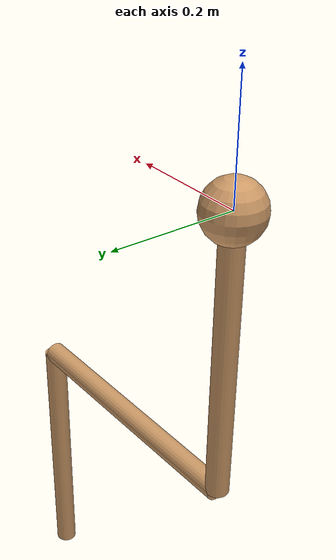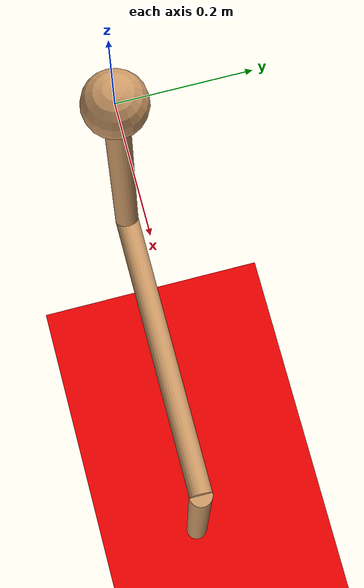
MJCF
<mujoco model="open-chain">
  <default>
    <geom rgba=".8 .6 .4 1" type="cylinder" size="0.02"/>
  </default>

  <compiler angle="radian" />

  <asset>
    <texture type="skybox" builtin="gradient" rgb1="1 1 1" rgb2=".6 .8 1" width="256" height="256"/>
  </asset>

	<option gravity="0 0 -9.8">
		<flag contact="disable" />
        <!-- so that we see no collision between different rods -->
	</option>

  <worldbody>
    <light pos="0 1 1" dir="0 -1 -1" diffuse="-1 1 1"/>
    <geom type="plane" size="1 1 0.1" rgba=".9 0 0 1" pos="0 0 -1.7"/>
    <body name="tracker-ball">
      <geom type="sphere" size="0.05"/>     <!-- helps showing desired end effector position. remove later -->
    </body>
    <body pos="0 0 0" euler="0.0 1.570796327 0.0">
      <joint type="hinge" axis = "0 1 0" name="joint1"/>
      <geom type="cylinder" fromto="0 0 0  0.5 0 0"/>
      <inertial mass="0.5" pos="0.25 0 0" diaginertia="0.01 0.01 0.01" />
      <body pos="0.5 0 0" euler="0.0 -1.570796327 0.0">
        <joint type="hinge" axis = "0 1 0" name="joint2"/>
        <geom type="cylinder" fromto="0 0 0  0.5 0 0"/>
        <inertial mass="0.5" pos="0.25 0 0" diaginertia="0.01 0.01 0.01" />

        <body pos="0.5 0 0" euler="0.0 1.570796327 0.0">
            <joint type="hinge" axis = "0 1 0" name="joint3"/>
            <geom type="cylinder" fromto="0 0 0  0.5 0 0"/>
            <inertial mass="0.5" pos="0.25 0 0" diaginertia="0.01 0.01 0.01" />
            <site pos="0.5 0 0" name="end_effector" />
        </body>
      </body>
    </body>
  </worldbody>

  	<actuator>
        <motor joint="joint1" name="torque1" gear="1" ctrllimited="false" />
        <motor joint="joint2" name="torque2" gear="1" ctrllimited="false" />
        <motor joint="joint3" name="torque3" gear="1" ctrllimited="false" />
	</actuator>
</mujoco>
